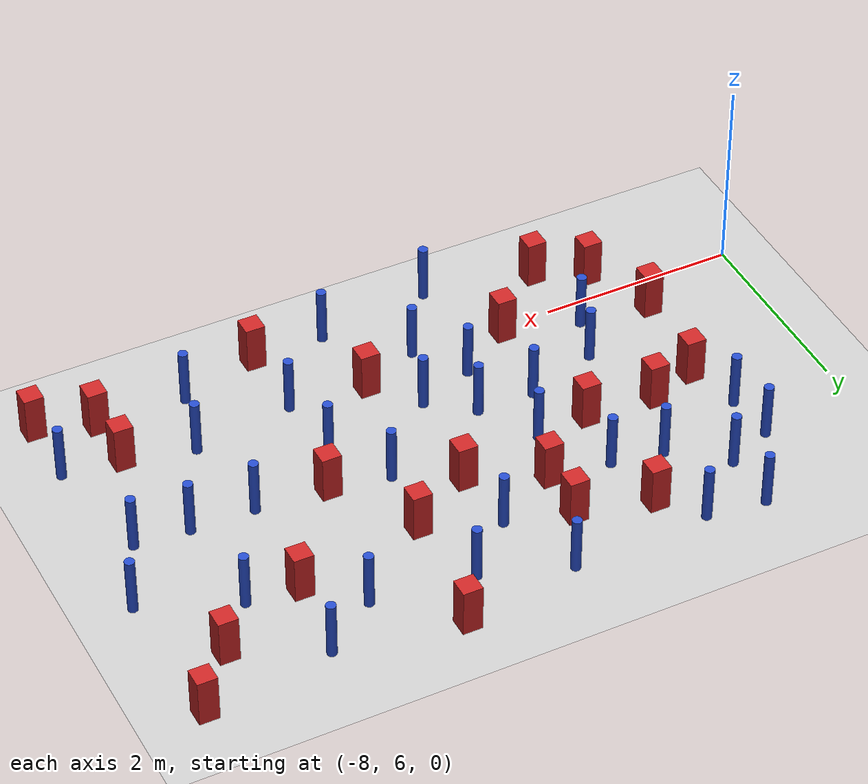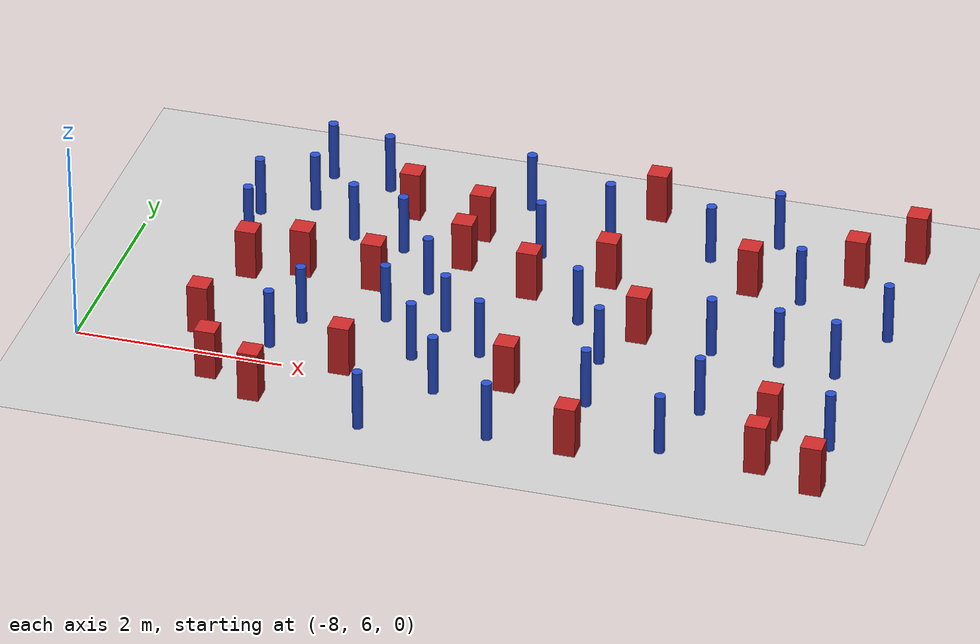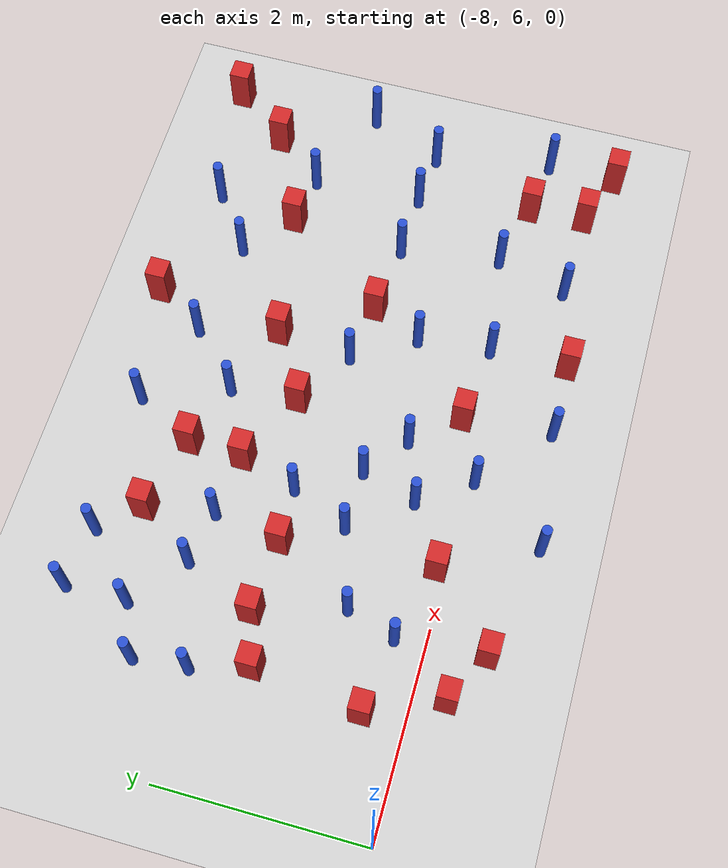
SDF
<sdf version="1.6">
 <world name="default">
  <model name="ground_plane">
   <static>1</static>
   <link name="link">
    <collision name="collision">
     <geometry><plane><normal>0 0 1</normal><size>100 100</size></plane></geometry>
     <surface><friction><ode><mu>100</mu><mu2>50</mu2></ode></friction></surface>
    </collision>
    <visual name="visual">
     <cast_shadows>0</cast_shadows>
     <geometry><plane><normal>0 0 1</normal><size>100 100</size></plane></geometry>
     <material>
      <ambient>1.0 1.0 1.0 1.0</ambient>
      <diffuse>0.8 0.8 0.8 1.0</diffuse>
      <specular>0.01 0.01 0.01 1.000000</specular>
     </material>
    </visual>
   </link>
  </model>
  <model name="pole_obstacle3">
   <static>true</static>
   <pose>-3.83155564193 5.35007794402 -2.66029137441e-07 -5.69430205635e-07 6.84129966557e-07 -8.68349370832e-08</pose>
   <link name="link">
    <pose>0 0 0.3 0 -0 0</pose>
    <inertial>
     <mass>1</mass>
     <inertia><ixx>0.145833</ixx><ixy>0</ixy><ixz>0</ixz><iyy>0.145833</iyy><iyz>0</iyz><izz>0.125</izz></inertia>
    </inertial>
    <collision name="collision">
     <geometry><cylinder><radius>0.05</radius><length>.6</length></cylinder></geometry>
    </collision>
    <visual name="visual">
     <geometry><cylinder><radius>0.05</radius><length>.6</length></cylinder></geometry>
     <material>
      <script><name>Gazebo/Blue</name><uri>file://media/materials/scripts/gazebo.material</uri></script>
     </material>
    </visual>
   </link>
  </model>
  <model name="square_post_obstacle4">
   <static>true</static>
   <pose>-3.45802651375 8.20342208291 -7.80171244635e-07 7.17449752808e-06 -5.6639232126e-07 2.2715510512e-05</pose>
   <link name="link">
    <pose>0 0 0.25 0 -0 0</pose>
    <inertial>
     <mass>100</mass>
     <inertia>
      <ixx>0.166667</ixx>
      <ixy>0</ixy>
      <ixz>0</ixz>
      <iyy>0.166667</iyy>
      <iyz>0</iyz>
      <izz>0.166667</izz>
     </inertia>
    </inertial>
    <collision name="collision"><geometry><box><size>.2 .2 .5</size></box></geometry></collision>
    <visual name="visual">
     <geometry><box><size>.2 .2 .5</size></box></geometry>
     <material>
      <script><name>Gazebo/Red</name><uri>file://media/materials/scripts/gazebo.material</uri></script>
     </material>
    </visual>
   </link>
  </model>
  <model name="pole_obstacle13">
   <static>true</static>
   <pose>-2.22282044226 7.28602632548 -2.66029137441e-07 -5.69430205635e-07 6.84129966557e-07 -8.68349370832e-08</pose>
   <link name="link">
    <pose>0 0 0.3 0 -0 0</pose>
    <inertial>
     <mass>1</mass>
     <inertia><ixx>0.145833</ixx><ixy>0</ixy><ixz>0</ixz><iyy>0.145833</iyy><iyz>0</iyz><izz>0.125</izz></inertia>
    </inertial>
    <collision name="collision">
     <geometry><cylinder><radius>0.05</radius><length>.6</length></cylinder></geometry>
    </collision>
    <visual name="visual">
     <geometry><cylinder><radius>0.05</radius><length>.6</length></cylinder></geometry>
     <material>
      <script><name>Gazebo/Blue</name><uri>file://media/materials/scripts/gazebo.material</uri></script>
     </material>
    </visual>
   </link>
  </model>
  <model name="square_post_obstacle10">
   <static>true</static>
   <pose>-1.35046148378 5.55683016346 -7.80171244635e-07 7.17449752808e-06 -5.6639232126e-07 2.2715510512e-05</pose>
   <link name="link">
    <pose>0 0 0.25 0 -0 0</pose>
    <inertial>
     <mass>100</mass>
     <inertia>
      <ixx>0.166667</ixx>
      <ixy>0</ixy>
      <ixz>0</ixz>
      <iyy>0.166667</iyy>
      <iyz>0</iyz>
      <izz>0.166667</izz>
     </inertia>
    </inertial>
    <collision name="collision"><geometry><box><size>.2 .2 .5</size></box></geometry></collision>
    <visual name="visual">
     <geometry><box><size>.2 .2 .5</size></box></geometry>
     <material>
      <script><name>Gazebo/Red</name><uri>file://media/materials/scripts/gazebo.material</uri></script>
     </material>
    </visual>
   </link>
  </model>
  <model name="pole_obstacle22">
   <static>true</static>
   <pose>-1.63562306769 8.36145736392 -2.66029137441e-07 -5.69430205648e-07 6.84129966543e-07 -8.68349370925e-08</pose>
   <link name="link">
    <pose>0 0 0.3 0 -0 0</pose>
    <inertial>
     <mass>1</mass>
     <inertia><ixx>0.145833</ixx><ixy>0</ixy><ixz>0</ixz><iyy>0.145833</iyy><iyz>0</iyz><izz>0.125</izz></inertia>
    </inertial>
    <collision name="collision">
     <geometry><cylinder><radius>0.05</radius><length>.6</length></cylinder></geometry>
    </collision>
    <visual name="visual">
     <geometry><cylinder><radius>0.05</radius><length>.6</length></cylinder></geometry>
     <material>
      <script><name>Gazebo/Blue</name><uri>file://media/materials/scripts/gazebo.material</uri></script>
     </material>
    </visual>
   </link>
  </model>
  <model name="square_post_obstacle18">
   <static>true</static>
   <pose>-6.28844079783 7.6105690469 -7.80171244635e-07 7.17449752808e-06 -5.6639232126e-07 2.2715510512e-05</pose>
   <link name="link">
    <pose>0 0 0.25 0 -0 0</pose>
    <inertial>
     <mass>100</mass>
     <inertia>
      <ixx>0.166667</ixx>
      <ixy>0</ixy>
      <ixz>0</ixz>
      <iyy>0.166667</iyy>
      <iyz>0</iyz>
      <izz>0.166667</izz>
     </inertia>
    </inertial>
    <collision name="collision"><geometry><box><size>.2 .2 .5</size></box></geometry></collision>
    <visual name="visual">
     <geometry><box><size>.2 .2 .5</size></box></geometry>
     <material>
      <script><name>Gazebo/Red</name><uri>file://media/materials/scripts/gazebo.material</uri></script>
     </material>
    </visual>
   </link>
  </model>
  <model name="pole_obstacle35">
   <static>true</static>
   <pose>-5.0119251478 5.20659015435 -2.66029137441e-07 -5.69430205655e-07 6.84129966534e-07 -8.68349370984e-08</pose>
   <link name="link">
    <pose>0 0 0.3 0 -0 0</pose>
    <inertial>
     <mass>1</mass>
     <inertia><ixx>0.145833</ixx><ixy>0</ixy><ixz>0</ixz><iyy>0.145833</iyy><iyz>0</iyz><izz>0.125</izz></inertia>
    </inertial>
    <collision name="collision">
     <geometry><cylinder><radius>0.05</radius><length>.6</length></cylinder></geometry>
    </collision>
    <visual name="visual">
     <geometry><cylinder><radius>0.05</radius><length>.6</length></cylinder></geometry>
     <material>
      <script><name>Gazebo/Blue</name><uri>file://media/materials/scripts/gazebo.material</uri></script>
     </material>
    </visual>
   </link>
  </model>
  <model name="pole_obstacle37">
   <static>true</static>
   <pose>-5.47903193001 8.22223488901 -2.66029137441e-07 -5.69430205631e-07 6.84129966561e-07 -8.68349370782e-08</pose>
   <link name="link">
    <pose>0 0 0.3 0 -0 0</pose>
    <inertial>
     <mass>1</mass>
     <inertia><ixx>0.145833</ixx><ixy>0</ixy><ixz>0</ixz><iyy>0.145833</iyy><iyz>0</iyz><izz>0.125</izz></inertia>
    </inertial>
    <collision name="collision">
     <geometry><cylinder><radius>0.05</radius><length>.6</length></cylinder></geometry>
    </collision>
    <visual name="visual">
     <geometry><cylinder><radius>0.05</radius><length>.6</length></cylinder></geometry>
     <material>
      <script><name>Gazebo/Blue</name><uri>file://media/materials/scripts/gazebo.material</uri></script>
     </material>
    </visual>
   </link>
  </model>
  <model name="pole_obstacle43">
   <static>true</static>
   <pose>-2.07350805295 6.28632991061 -2.66029137441e-07 -5.69430205635e-07 6.84129966557e-07 -8.68349370832e-08</pose>
   <link name="link">
    <pose>0 0 0.3 0 -0 0</pose>
    <inertial>
     <mass>1</mass>
     <inertia><ixx>0.145833</ixx><ixy>0</ixy><ixz>0</ixz><iyy>0.145833</iyy><iyz>0</iyz><izz>0.125</izz></inertia>
    </inertial>
    <collision name="collision">
     <geometry><cylinder><radius>0.05</radius><length>.6</length></cylinder></geometry>
    </collision>
    <visual name="visual">
     <geometry><cylinder><radius>0.05</radius><length>.6</length></cylinder></geometry>
     <material>
      <script><name>Gazebo/Blue</name><uri>file://media/materials/scripts/gazebo.material</uri></script>
     </material>
    </visual>
   </link>
  </model>
  <model name="square_post_obstacle35">
   <static>true</static>
   <pose>-0.756517397832 9.43975588993 -7.80171244635e-07 7.17449752808e-06 -5.6639232126e-07 2.2715510512e-05</pose>
   <link name="link">
    <pose>0 0 0.25 0 -0 0</pose>
    <inertial>
     <mass>100</mass>
     <inertia>
      <ixx>0.166667</ixx>
      <ixy>0</ixy>
      <ixz>0</ixz>
      <iyy>0.166667</iyy>
      <iyz>0</iyz>
      <izz>0.166667</izz>
     </inertia>
    </inertial>
    <collision name="collision"><geometry><box><size>.2 .2 .5</size></box></geometry></collision>
    <visual name="visual">
     <geometry><box><size>.2 .2 .5</size></box></geometry>
     <material>
      <script><name>Gazebo/Red</name><uri>file://media/materials/scripts/gazebo.material</uri></script>
     </material>
    </visual>
   </link>
  </model>
  <model name="pole_obstacle62">
   <static>true</static>
   <pose>-6.51730041118 9.33037600184 -2.66029137441e-07 -5.69430205631e-07 6.84129966561e-07 -8.68349370782e-08</pose>
   <link name="link">
    <pose>0 0 0.3 0 -0 0</pose>
    <inertial>
     <mass>1</mass>
     <inertia><ixx>0.145833</ixx><ixy>0</ixy><ixz>0</ixz><iyy>0.145833</iyy><iyz>0</iyz><izz>0.125</izz></inertia>
    </inertial>
    <collision name="collision">
     <geometry><cylinder><radius>0.05</radius><length>.6</length></cylinder></geometry>
    </collision>
    <visual name="visual">
     <geometry><cylinder><radius>0.05</radius><length>.6</length></cylinder></geometry>
     <material>
      <script><name>Gazebo/Blue</name><uri>file://media/materials/scripts/gazebo.material</uri></script>
     </material>
    </visual>
   </link>
  </model>
  <model name="pole_obstacle67">
   <static>true</static>
   <pose>-5.28937603541 7.01205851027 -2.66029137441e-07 -5.69430205655e-07 6.84129966534e-07 -8.68349370984e-08</pose>
   <link name="link">
    <pose>0 0 0.3 0 -0 0</pose>
    <inertial>
     <mass>1</mass>
     <inertia><ixx>0.145833</ixx><ixy>0</ixy><ixz>0</ixz><iyy>0.145833</iyy><iyz>0</iyz><izz>0.125</izz></inertia>
    </inertial>
    <collision name="collision">
     <geometry><cylinder><radius>0.05</radius><length>.6</length></cylinder></geometry>
    </collision>
    <visual name="visual">
     <geometry><cylinder><radius>0.05</radius><length>.6</length></cylinder></geometry>
     <material>
      <script><name>Gazebo/Blue</name><uri>file://media/materials/scripts/gazebo.material</uri></script>
     </material>
    </visual>
   </link>
  </model>
  <model name="pole_obstacle68">
   <static>true</static>
   <pose>-4.19844832474 8.4826726682 -2.66029137441e-07 -5.69430205631e-07 6.84129966561e-07 -8.68349370782e-08</pose>
   <link name="link">
    <pose>0 0 0.3 0 -0 0</pose>
    <inertial>
     <mass>1</mass>
     <inertia><ixx>0.145833</ixx><ixy>0</ixy><ixz>0</ixz><iyy>0.145833</iyy><iyz>0</iyz><izz>0.125</izz></inertia>
    </inertial>
    <collision name="collision">
     <geometry><cylinder><radius>0.05</radius><length>.6</length></cylinder></geometry>
    </collision>
    <visual name="visual">
     <geometry><cylinder><radius>0.05</radius><length>.6</length></cylinder></geometry>
     <material>
      <script><name>Gazebo/Blue</name><uri>file://media/materials/scripts/gazebo.material</uri></script>
     </material>
    </visual>
   </link>
  </model>
  <model name="square_post_obstacle53">
   <static>true</static>
   <pose>-6.60438786823 5.69922697077 -7.80171244635e-07 7.17449752808e-06 -5.6639232126e-07 2.2715510512e-05</pose>
   <link name="link">
    <pose>0 0 0.25 0 -0 0</pose>
    <inertial>
     <mass>100</mass>
     <inertia>
      <ixx>0.166667</ixx>
      <ixy>0</ixy>
      <ixz>0</ixz>
      <iyy>0.166667</iyy>
      <iyz>0</iyz>
      <izz>0.166667</izz>
     </inertia>
    </inertial>
    <collision name="collision"><geometry><box><size>.2 .2 .5</size></box></geometry></collision>
    <visual name="visual">
     <geometry><box><size>.2 .2 .5</size></box></geometry>
     <material>
      <script><name>Gazebo/Red</name><uri>file://media/materials/scripts/gazebo.material</uri></script>
     </material>
    </visual>
   </link>
  </model>
  <model name="square_post_obstacle54">
   <static>true</static>
   <pose>-6.90841727113 6.40134855489 -7.80171244635e-07 7.17449752808e-06 -5.6639232126e-07 2.2715510512e-05</pose>
   <link name="link">
    <pose>0 0 0.25 0 -0 0</pose>
    <inertial>
     <mass>100</mass>
     <inertia>
      <ixx>0.166667</ixx>
      <ixy>0</ixy>
      <ixz>0</ixz>
      <iyy>0.166667</iyy>
      <iyz>0</iyz>
      <izz>0.166667</izz>
     </inertia>
    </inertial>
    <collision name="collision"><geometry><box><size>.2 .2 .5</size></box></geometry></collision>
    <visual name="visual">
     <geometry><box><size>.2 .2 .5</size></box></geometry>
     <material>
      <script><name>Gazebo/Red</name><uri>file://media/materials/scripts/gazebo.material</uri></script>
     </material>
    </visual>
   </link>
  </model>
  <model name="pole_obstacle74">
   <static>true</static>
   <pose>-3.18417632675 6.85759458082 -2.66029137441e-07 -5.69430205635e-07 6.84129966557e-07 -8.68349370832e-08</pose>
   <link name="link">
    <pose>0 0 0.3 0 -0 0</pose>
    <inertial>
     <mass>1</mass>
     <inertia><ixx>0.145833</ixx><ixy>0</ixy><ixz>0</ixz><iyy>0.145833</iyy><iyz>0</iyz><izz>0.125</izz></inertia>
    </inertial>
    <collision name="collision">
     <geometry><cylinder><radius>0.05</radius><length>.6</length></cylinder></geometry>
    </collision>
    <visual name="visual">
     <geometry><cylinder><radius>0.05</radius><length>.6</length></cylinder></geometry>
     <material>
      <script><name>Gazebo/Blue</name><uri>file://media/materials/scripts/gazebo.material</uri></script>
     </material>
    </visual>
   </link>
  </model>
  <model name="square_post_obstacle65">
   <static>true</static>
   <pose>-4.85538721014 8.14171201893 -7.80171244635e-07 7.17449752808e-06 -5.6639232126e-07 2.2715510512e-05</pose>
   <link name="link">
    <pose>0 0 0.25 0 -0 0</pose>
    <inertial>
     <mass>100</mass>
     <inertia>
      <ixx>0.166667</ixx>
      <ixy>0</ixy>
      <ixz>0</ixz>
      <iyy>0.166667</iyy>
      <iyz>0</iyz>
      <izz>0.166667</izz>
     </inertia>
    </inertial>
    <collision name="collision"><geometry><box><size>.2 .2 .5</size></box></geometry></collision>
    <visual name="visual">
     <geometry><box><size>.2 .2 .5</size></box></geometry>
     <material>
      <script><name>Gazebo/Red</name><uri>file://media/materials/scripts/gazebo.material</uri></script>
     </material>
    </visual>
   </link>
  </model>
  <model name="square_post_obstacle67">
   <static>true</static>
   <pose>-1.21285131848 8.86577092566 -7.80171244635e-07 7.17449752808e-06 -5.6639232126e-07 2.2715510512e-05</pose>
   <link name="link">
    <pose>0 0 0.25 0 -0 0</pose>
    <inertial>
     <mass>100</mass>
     <inertia>
      <ixx>0.166667</ixx>
      <ixy>0</ixy>
      <ixz>0</ixz>
      <iyy>0.166667</iyy>
      <iyz>0</iyz>
      <izz>0.166667</izz>
     </inertia>
    </inertial>
    <collision name="collision"><geometry><box><size>.2 .2 .5</size></box></geometry></collision>
    <visual name="visual">
     <geometry><box><size>.2 .2 .5</size></box></geometry>
     <material>
      <script><name>Gazebo/Red</name><uri>file://media/materials/scripts/gazebo.material</uri></script>
     </material>
    </visual>
   </link>
  </model>
  <model name="pole_obstacle84">
   <static>true</static>
   <pose>-6.04051974747 6.77217891038 -2.66029137441e-07 -5.69430205655e-07 6.84129966534e-07 -8.68349370984e-08</pose>
   <link name="link">
    <pose>0 0 0.3 0 -0 0</pose>
    <inertial>
     <mass>1</mass>
     <inertia><ixx>0.145833</ixx><ixy>0</ixy><ixz>0</ixz><iyy>0.145833</iyy><iyz>0</iyz><izz>0.125</izz></inertia>
    </inertial>
    <collision name="collision">
     <geometry><cylinder><radius>0.05</radius><length>.6</length></cylinder></geometry>
    </collision>
    <visual name="visual">
     <geometry><cylinder><radius>0.05</radius><length>.6</length></cylinder></geometry>
     <material>
      <script><name>Gazebo/Blue</name><uri>file://media/materials/scripts/gazebo.material</uri></script>
     </material>
    </visual>
   </link>
  </model>
  <model name="pole_obstacle85">
   <static>true</static>
   <pose>-4.70210681934 6.99909712887 -2.66029137441e-07 -5.69430205655e-07 6.84129966534e-07 -8.68349370984e-08</pose>
   <link name="link">
    <pose>0 0 0.3 0 -0 0</pose>
    <inertial>
     <mass>1</mass>
     <inertia><ixx>0.145833</ixx><ixy>0</ixy><ixz>0</ixz><iyy>0.145833</iyy><iyz>0</iyz><izz>0.125</izz></inertia>
    </inertial>
    <collision name="collision">
     <geometry><cylinder><radius>0.05</radius><length>.6</length></cylinder></geometry>
    </collision>
    <visual name="visual">
     <geometry><cylinder><radius>0.05</radius><length>.6</length></cylinder></geometry>
     <material>
      <script><name>Gazebo/Blue</name><uri>file://media/materials/scripts/gazebo.material</uri></script>
     </material>
    </visual>
   </link>
  </model>
  <model name="square_post_obstacle80">
   <static>true</static>
   <pose>-0.787042544222 5.35771507128 -7.80171244635e-07 7.17449752808e-06 -5.6639232126e-07 2.2715510512e-05</pose>
   <link name="link">
    <pose>0 0 0.25 0 -0 0</pose>
    <inertial>
     <mass>100</mass>
     <inertia>
      <ixx>0.166667</ixx>
      <ixy>0</ixy>
      <ixz>0</ixz>
      <iyy>0.166667</iyy>
      <iyz>0</iyz>
      <izz>0.166667</izz>
     </inertia>
    </inertial>
    <collision name="collision"><geometry><box><size>.2 .2 .5</size></box></geometry></collision>
    <visual name="visual">
     <geometry><box><size>.2 .2 .5</size></box></geometry>
     <material>
      <script><name>Gazebo/Red</name><uri>file://media/materials/scripts/gazebo.material</uri></script>
     </material>
    </visual>
   </link>
  </model>
  <model name="square_post_obstacle84">
   <static>true</static>
   <pose>-5.43868791954 6.09136966654 -7.80171244635e-07 7.17449752808e-06 -5.6639232126e-07 2.2715510512e-05</pose>
   <link name="link">
    <pose>0 0 0.25 0 -0 0</pose>
    <inertial>
     <mass>100</mass>
     <inertia>
      <ixx>0.166667</ixx>
      <ixy>0</ixy>
      <ixz>0</ixz>
      <iyy>0.166667</iyy>
      <iyz>0</iyz>
      <izz>0.166667</izz>
     </inertia>
    </inertial>
    <collision name="collision"><geometry><box><size>.2 .2 .5</size></box></geometry></collision>
    <visual name="visual">
     <geometry><box><size>.2 .2 .5</size></box></geometry>
     <material>
      <script><name>Gazebo/Red</name><uri>file://media/materials/scripts/gazebo.material</uri></script>
     </material>
    </visual>
   </link>
  </model>
  <model name="pole_obstacle98">
   <static>true</static>
   <pose>-2.26637634134 5.57869534648 -2.66029137441e-07 -5.69430205635e-07 6.84129966557e-07 -8.68349370832e-08</pose>
   <link name="link">
    <pose>0 0 0.3 0 -0 0</pose>
    <inertial>
     <mass>1</mass>
     <inertia><ixx>0.145833</ixx><ixy>0</ixy><ixz>0</ixz><iyy>0.145833</iyy><iyz>0</iyz><izz>0.125</izz></inertia>
    </inertial>
    <collision name="collision">
     <geometry><cylinder><radius>0.05</radius><length>.6</length></cylinder></geometry>
    </collision>
    <visual name="visual">
     <geometry><cylinder><radius>0.05</radius><length>.6</length></cylinder></geometry>
     <material>
      <script><name>Gazebo/Blue</name><uri>file://media/materials/scripts/gazebo.material</uri></script>
     </material>
    </visual>
   </link>
  </model>
  <model name="square_post_obstacle97">
   <static>true</static>
   <pose>-4.83306987089 8.68425424753 -7.80171244635e-07 7.17449752808e-06 -5.6639232126e-07 2.2715510512e-05</pose>
   <link name="link">
    <pose>0 0 0.25 0 -0 0</pose>
    <inertial>
     <mass>100</mass>
     <inertia>
      <ixx>0.166667</ixx>
      <ixy>0</ixy>
      <ixz>0</ixz>
      <iyy>0.166667</iyy>
      <iyz>0</iyz>
      <izz>0.166667</izz>
     </inertia>
    </inertial>
    <collision name="collision"><geometry><box><size>.2 .2 .5</size></box></geometry></collision>
    <visual name="visual">
     <geometry><box><size>.2 .2 .5</size></box></geometry>
     <material>
      <script><name>Gazebo/Red</name><uri>file://media/materials/scripts/gazebo.material</uri></script>
     </material>
    </visual>
   </link>
  </model>
  <model name="pole_obstacle103">
   <static>true</static>
   <pose>-2.0657132263 9.26760777815 -2.66029137497e-07 -5.69430205676e-07 6.84129966501e-07 -8.6834937112e-08</pose>
   <link name="link">
    <pose>0 0 0.3 0 -0 0</pose>
    <inertial>
     <mass>1</mass>
     <inertia><ixx>0.145833</ixx><ixy>0</ixy><ixz>0</ixz><iyy>0.145833</iyy><iyz>0</iyz><izz>0.125</izz></inertia>
    </inertial>
    <collision name="collision">
     <geometry><cylinder><radius>0.05</radius><length>.6</length></cylinder></geometry>
    </collision>
    <visual name="visual">
     <geometry><cylinder><radius>0.05</radius><length>.6</length></cylinder></geometry>
     <material>
      <script><name>Gazebo/Blue</name><uri>file://media/materials/scripts/gazebo.material</uri></script>
     </material>
    </visual>
   </link>
  </model>
  <model name="square_post_obstacle99">
   <static>true</static>
   <pose>-2.9395717654 7.36137374636 -7.80171244635e-07 7.17449752808e-06 -5.6639232126e-07 2.2715510512e-05</pose>
   <link name="link">
    <pose>0 0 0.25 0 -0 0</pose>
    <inertial>
     <mass>100</mass>
     <inertia>
      <ixx>0.166667</ixx>
      <ixy>0</ixy>
      <ixz>0</ixz>
      <iyy>0.166667</iyy>
      <iyz>0</iyz>
      <izz>0.166667</izz>
     </inertia>
    </inertial>
    <collision name="collision"><geometry><box><size>.2 .2 .5</size></box></geometry></collision>
    <visual name="visual">
     <geometry><box><size>.2 .2 .5</size></box></geometry>
     <material>
      <script><name>Gazebo/Red</name><uri>file://media/materials/scripts/gazebo.material</uri></script>
     </material>
    </visual>
   </link>
  </model>
  <model name="pole_obstacle111">
   <static>true</static>
   <pose>-4.51720619491 9.29301747409 -2.66029137441e-07 -5.69430205631e-07 6.84129966561e-07 -8.68349370782e-08</pose>
   <link name="link">
    <pose>0 0 0.3 0 -0 0</pose>
    <inertial>
     <mass>1</mass>
     <inertia><ixx>0.145833</ixx><ixy>0</ixy><ixz>0</ixz><iyy>0.145833</iyy><iyz>0</iyz><izz>0.125</izz></inertia>
    </inertial>
    <collision name="collision">
     <geometry><cylinder><radius>0.05</radius><length>.6</length></cylinder></geometry>
    </collision>
    <visual name="visual">
     <geometry><cylinder><radius>0.05</radius><length>.6</length></cylinder></geometry>
     <material>
      <script><name>Gazebo/Blue</name><uri>file://media/materials/scripts/gazebo.material</uri></script>
     </material>
    </visual>
   </link>
  </model>
  <model name="pole_obstacle115">
   <static>true</static>
   <pose>-6.20096019763 6.2934191414 -2.66029137441e-07 -5.69430205655e-07 6.84129966534e-07 -8.68349370984e-08</pose>
   <link name="link">
    <pose>0 0 0.3 0 -0 0</pose>
    <inertial>
     <mass>1</mass>
     <inertia><ixx>0.145833</ixx><ixy>0</ixy><ixz>0</ixz><iyy>0.145833</iyy><iyz>0</iyz><izz>0.125</izz></inertia>
    </inertial>
    <collision name="collision">
     <geometry><cylinder><radius>0.05</radius><length>.6</length></cylinder></geometry>
    </collision>
    <visual name="visual">
     <geometry><cylinder><radius>0.05</radius><length>.6</length></cylinder></geometry>
     <material>
      <script><name>Gazebo/Blue</name><uri>file://media/materials/scripts/gazebo.material</uri></script>
     </material>
    </visual>
   </link>
  </model>
  <model name="square_post_obstacle114">
   <static>true</static>
   <pose>-3.8923312352 6.22501052048 -7.80171244635e-07 7.17449752808e-06 -5.6639232126e-07 2.2715510512e-05</pose>
   <link name="link">
    <pose>0 0 0.25 0 -0 0</pose>
    <inertial>
     <mass>100</mass>
     <inertia>
      <ixx>0.166667</ixx>
      <ixy>0</ixy>
      <ixz>0</ixz>
      <iyy>0.166667</iyy>
      <iyz>0</iyz>
      <izz>0.166667</izz>
     </inertia>
    </inertial>
    <collision name="collision"><geometry><box><size>.2 .2 .5</size></box></geometry></collision>
    <visual name="visual">
     <geometry><box><size>.2 .2 .5</size></box></geometry>
     <material>
      <script><name>Gazebo/Red</name><uri>file://media/materials/scripts/gazebo.material</uri></script>
     </material>
    </visual>
   </link>
  </model>
  <model name="square_post_obstacle115">
   <static>true</static>
   <pose>-5.58568108839 8.87641415121 -7.80171244635e-07 7.17449752808e-06 -5.6639232126e-07 2.2715510512e-05</pose>
   <link name="link">
    <pose>0 0 0.25 0 -0 0</pose>
    <inertial>
     <mass>100</mass>
     <inertia>
      <ixx>0.166667</ixx>
      <ixy>0</ixy>
      <ixz>0</ixz>
      <iyy>0.166667</iyy>
      <iyz>0</iyz>
      <izz>0.166667</izz>
     </inertia>
    </inertial>
    <collision name="collision"><geometry><box><size>.2 .2 .5</size></box></geometry></collision>
    <visual name="visual">
     <geometry><box><size>.2 .2 .5</size></box></geometry>
     <material>
      <script><name>Gazebo/Red</name><uri>file://media/materials/scripts/gazebo.material</uri></script>
     </material>
    </visual>
   </link>
  </model>
  <model name="pole_obstacle126">
   <static>true</static>
   <pose>-4.51668198272 5.95405970861 -2.66029137441e-07 -5.69430205655e-07 6.84129966534e-07 -8.68349370984e-08</pose>
   <link name="link">
    <pose>0 0 0.3 0 -0 0</pose>
    <inertial>
     <mass>1</mass>
     <inertia><ixx>0.145833</ixx><ixy>0</ixy><ixz>0</ixz><iyy>0.145833</iyy><iyz>0</iyz><izz>0.125</izz></inertia>
    </inertial>
    <collision name="collision">
     <geometry><cylinder><radius>0.05</radius><length>.6</length></cylinder></geometry>
    </collision>
    <visual name="visual">
     <geometry><cylinder><radius>0.05</radius><length>.6</length></cylinder></geometry>
     <material>
      <script><name>Gazebo/Blue</name><uri>file://media/materials/scripts/gazebo.material</uri></script>
     </material>
    </visual>
   </link>
  </model>
  <model name="pole_obstacle137">
   <static>true</static>
   <pose>-1.57457767515 7.26766557853 -2.66029137441e-07 -5.69430205635e-07 6.84129966557e-07 -8.68349370822e-08</pose>
   <link name="link">
    <pose>0 0 0.3 0 -0 0</pose>
    <inertial>
     <mass>1</mass>
     <inertia><ixx>0.145833</ixx><ixy>0</ixy><ixz>0</ixz><iyy>0.145833</iyy><iyz>0</iyz><izz>0.125</izz></inertia>
    </inertial>
    <collision name="collision">
     <geometry><cylinder><radius>0.05</radius><length>.6</length></cylinder></geometry>
    </collision>
    <visual name="visual">
     <geometry><cylinder><radius>0.05</radius><length>.6</length></cylinder></geometry>
     <material>
      <script><name>Gazebo/Blue</name><uri>file://media/materials/scripts/gazebo.material</uri></script>
     </material>
    </visual>
   </link>
  </model>
  <model name="square_post_obstacle136">
   <static>true</static>
   <pose>-1.3748794912 6.12511199607 -7.80171244635e-07 7.17449752808e-06 -5.6639232126e-07 2.2715510512e-05</pose>
   <link name="link">
    <pose>0 0 0.25 0 -0 0</pose>
    <inertial>
     <mass>100</mass>
     <inertia>
      <ixx>0.166667</ixx>
      <ixy>0</ixy>
      <ixz>0</ixz>
      <iyy>0.166667</iyy>
      <iyz>0</iyz>
      <izz>0.166667</izz>
     </inertia>
    </inertial>
    <collision name="collision"><geometry><box><size>.2 .2 .5</size></box></geometry></collision>
    <visual name="visual">
     <geometry><box><size>.2 .2 .5</size></box></geometry>
     <material>
      <script><name>Gazebo/Red</name><uri>file://media/materials/scripts/gazebo.material</uri></script>
     </material>
    </visual>
   </link>
  </model>
  <model name="pole_obstacle141">
   <static>true</static>
   <pose>-5.04408427418 7.57913752985 -2.66029137441e-07 -5.69430205655e-07 6.84129966534e-07 -8.68349370984e-08</pose>
   <link name="link">
    <pose>0 0 0.3 0 -0 0</pose>
    <inertial>
     <mass>1</mass>
     <inertia><ixx>0.145833</ixx><ixy>0</ixy><ixz>0</ixz><iyy>0.145833</iyy><iyz>0</iyz><izz>0.125</izz></inertia>
    </inertial>
    <collision name="collision">
     <geometry><cylinder><radius>0.05</radius><length>.6</length></cylinder></geometry>
    </collision>
    <visual name="visual">
     <geometry><cylinder><radius>0.05</radius><length>.6</length></cylinder></geometry>
     <material>
      <script><name>Gazebo/Blue</name><uri>file://media/materials/scripts/gazebo.material</uri></script>
     </material>
    </visual>
   </link>
  </model>
  <model name="pole_obstacle143">
   <static>true</static>
   <pose>-6.51559439478 8.72923597652 -2.66029137441e-07 -5.69430205631e-07 6.84129966561e-07 -8.68349370782e-08</pose>
   <link name="link">
    <pose>0 0 0.3 0 -0 0</pose>
    <inertial>
     <mass>1</mass>
     <inertia><ixx>0.145833</ixx><ixy>0</ixy><ixz>0</ixz><iyy>0.145833</iyy><iyz>0</iyz><izz>0.125</izz></inertia>
    </inertial>
    <collision name="collision">
     <geometry><cylinder><radius>0.05</radius><length>.6</length></cylinder></geometry>
    </collision>
    <visual name="visual">
     <geometry><cylinder><radius>0.05</radius><length>.6</length></cylinder></geometry>
     <material>
      <script><name>Gazebo/Blue</name><uri>file://media/materials/scripts/gazebo.material</uri></script>
     </material>
    </visual>
   </link>
  </model>
  <model name="pole_obstacle151">
   <static>true</static>
   <pose>-3.65585699153 8.99138015541 -2.66029137441e-07 -5.69430205637e-07 6.84129966555e-07 -8.68349370847e-08</pose>
   <link name="link">
    <pose>0 0 0.3 0 -0 0</pose>
    <inertial>
     <mass>1</mass>
     <inertia><ixx>0.145833</ixx><ixy>0</ixy><ixz>0</ixz><iyy>0.145833</iyy><iyz>0</iyz><izz>0.125</izz></inertia>
    </inertial>
    <collision name="collision">
     <geometry><cylinder><radius>0.05</radius><length>.6</length></cylinder></geometry>
    </collision>
    <visual name="visual">
     <geometry><cylinder><radius>0.05</radius><length>.6</length></cylinder></geometry>
     <material>
      <script><name>Gazebo/Blue</name><uri>file://media/materials/scripts/gazebo.material</uri></script>
     </material>
    </visual>
   </link>
  </model>
  <model name="pole_obstacle152">
   <static>true</static>
   <pose>-6.95082460787 7.99515115382 -2.66029137441e-07 -5.69430205635e-07 6.84129966557e-07 -8.6834937082e-08</pose>
   <link name="link">
    <pose>0 0 0.3 0 -0 0</pose>
    <inertial>
     <mass>1</mass>
     <inertia><ixx>0.145833</ixx><ixy>0</ixy><ixz>0</ixz><iyy>0.145833</iyy><iyz>0</iyz><izz>0.125</izz></inertia>
    </inertial>
    <collision name="collision">
     <geometry><cylinder><radius>0.05</radius><length>.6</length></cylinder></geometry>
    </collision>
    <visual name="visual">
     <geometry><cylinder><radius>0.05</radius><length>.6</length></cylinder></geometry>
     <material>
      <script><name>Gazebo/Blue</name><uri>file://media/materials/scripts/gazebo.material</uri></script>
     </material>
    </visual>
   </link>
  </model>
  <model name="square_post_obstacle145">
   <static>true</static>
   <pose>-4.12640113897 7.8137386273 -7.80171244635e-07 7.17449752808e-06 -5.6639232126e-07 2.2715510512e-05</pose>
   <link name="link">
    <pose>0 0 0.25 0 -0 0</pose>
    <inertial>
     <mass>100</mass>
     <inertia>
      <ixx>0.166667</ixx>
      <ixy>0</ixy>
      <ixz>0</ixz>
      <iyy>0.166667</iyy>
      <iyz>0</iyz>
      <izz>0.166667</izz>
     </inertia>
    </inertial>
    <collision name="collision"><geometry><box><size>.2 .2 .5</size></box></geometry></collision>
    <visual name="visual">
     <geometry><box><size>.2 .2 .5</size></box></geometry>
     <material>
      <script><name>Gazebo/Red</name><uri>file://media/materials/scripts/gazebo.material</uri></script>
     </material>
    </visual>
   </link>
  </model>
  <model name="pole_obstacle153">
   <static>true</static>
   <pose>-3.55230551147 7.45695394257 -2.66029137441e-07 -5.69430205635e-07 6.84129966557e-07 -8.68349370832e-08</pose>
   <link name="link">
    <pose>0 0 0.3 0 -0 0</pose>
    <inertial>
     <mass>1</mass>
     <inertia><ixx>0.145833</ixx><ixy>0</ixy><ixz>0</ixz><iyy>0.145833</iyy><iyz>0</iyz><izz>0.125</izz></inertia>
    </inertial>
    <collision name="collision">
     <geometry><cylinder><radius>0.05</radius><length>.6</length></cylinder></geometry>
    </collision>
    <visual name="visual">
     <geometry><cylinder><radius>0.05</radius><length>.6</length></cylinder></geometry>
     <material>
      <script><name>Gazebo/Blue</name><uri>file://media/materials/scripts/gazebo.material</uri></script>
     </material>
    </visual>
   </link>
  </model>
  <model name="pole_obstacle168">
   <static>true</static>
   <pose>-3.11189494337 6.13529411627 -2.66029137497e-07 -5.69430205671e-07 6.84129966507e-07 -8.68349371095e-08</pose>
   <link name="link">
    <pose>0 0 0.3 0 -0 0</pose>
    <inertial>
     <mass>1</mass>
     <inertia><ixx>0.145833</ixx><ixy>0</ixy><ixz>0</ixz><iyy>0.145833</iyy><iyz>0</iyz><izz>0.125</izz></inertia>
    </inertial>
    <collision name="collision">
     <geometry><cylinder><radius>0.05</radius><length>.6</length></cylinder></geometry>
    </collision>
    <visual name="visual">
     <geometry><cylinder><radius>0.05</radius><length>.6</length></cylinder></geometry>
     <material>
      <script><name>Gazebo/Blue</name><uri>file://media/materials/scripts/gazebo.material</uri></script>
     </material>
    </visual>
   </link>
  </model>
  <model name="pole_obstacle170">
   <static>true</static>
   <pose>-0.701549047184 7.96145384339 -2.66029137441e-07 -5.69430205642e-07 6.84129966549e-07 -8.68349370879e-08</pose>
   <link name="link">
    <pose>0 0 0.3 0 -0 0</pose>
    <inertial>
     <mass>1</mass>
     <inertia><ixx>0.145833</ixx><ixy>0</ixy><ixz>0</ixz><iyy>0.145833</iyy><iyz>0</iyz><izz>0.125</izz></inertia>
    </inertial>
    <collision name="collision">
     <geometry><cylinder><radius>0.05</radius><length>.6</length></cylinder></geometry>
    </collision>
    <visual name="visual">
     <geometry><cylinder><radius>0.05</radius><length>.6</length></cylinder></geometry>
     <material>
      <script><name>Gazebo/Blue</name><uri>file://media/materials/scripts/gazebo.material</uri></script>
     </material>
    </visual>
   </link>
  </model>
  <model name="square_post_obstacle172">
   <static>true</static>
   <pose>-3.07698803594 5.36464679175 -7.80171244635e-07 7.17449752808e-06 -5.6639232126e-07 2.2715510512e-05</pose>
   <link name="link">
    <pose>0 0 0.25 0 -0 0</pose>
    <inertial>
     <mass>100</mass>
     <inertia>
      <ixx>0.166667</ixx>
      <ixy>0</ixy>
      <ixz>0</ixz>
      <iyy>0.166667</iyy>
      <iyz>0</iyz>
      <izz>0.166667</izz>
     </inertia>
    </inertial>
    <collision name="collision"><geometry><box><size>.2 .2 .5</size></box></geometry></collision>
    <visual name="visual">
     <geometry><box><size>.2 .2 .5</size></box></geometry>
     <material>
      <script><name>Gazebo/Red</name><uri>file://media/materials/scripts/gazebo.material</uri></script>
     </material>
    </visual>
   </link>
  </model>
  <model name="pole_obstacle179">
   <static>true</static>
   <pose>-5.92313193138 9.25082947294 -2.66029137441e-07 -5.69430205631e-07 6.84129966561e-07 -8.68349370782e-08</pose>
   <link name="link">
    <pose>0 0 0.3 0 -0 0</pose>
    <inertial>
     <mass>1</mass>
     <inertia><ixx>0.145833</ixx><ixy>0</ixy><ixz>0</ixz><iyy>0.145833</iyy><iyz>0</iyz><izz>0.125</izz></inertia>
    </inertial>
    <collision name="collision">
     <geometry><cylinder><radius>0.05</radius><length>.6</length></cylinder></geometry>
    </collision>
    <visual name="visual">
     <geometry><cylinder><radius>0.05</radius><length>.6</length></cylinder></geometry>
     <material>
      <script><name>Gazebo/Blue</name><uri>file://media/materials/scripts/gazebo.material</uri></script>
     </material>
    </visual>
   </link>
  </model>
  <model name="pole_obstacle180">
   <static>true</static>
   <pose>-4.28005993833 6.66628853146 -2.66029137441e-07 -5.69430205655e-07 6.84129966534e-07 -8.68349370984e-08</pose>
   <link name="link">
    <pose>0 0 0.3 0 -0 0</pose>
    <inertial>
     <mass>1</mass>
     <inertia><ixx>0.145833</ixx><ixy>0</ixy><ixz>0</ixz><iyy>0.145833</iyy><iyz>0</iyz><izz>0.125</izz></inertia>
    </inertial>
    <collision name="collision">
     <geometry><cylinder><radius>0.05</radius><length>.6</length></cylinder></geometry>
    </collision>
    <visual name="visual">
     <geometry><cylinder><radius>0.05</radius><length>.6</length></cylinder></geometry>
     <material>
      <script><name>Gazebo/Blue</name><uri>file://media/materials/scripts/gazebo.material</uri></script>
     </material>
    </visual>
   </link>
  </model>
  <model name="square_post_obstacle180">
   <static>true</static>
   <pose>-3.3088390037 9.49504350098 -7.80171244635e-07 7.17449752808e-06 -5.6639232126e-07 2.2715510512e-05</pose>
   <link name="link">
    <pose>0 0 0.25 0 -0 0</pose>
    <inertial>
     <mass>100</mass>
     <inertia>
      <ixx>0.166667</ixx>
      <ixy>0</ixy>
      <ixz>0</ixz>
      <iyy>0.166667</iyy>
      <iyz>0</iyz>
      <izz>0.166667</izz>
     </inertia>
    </inertial>
    <collision name="collision"><geometry><box><size>.2 .2 .5</size></box></geometry></collision>
    <visual name="visual">
     <geometry><box><size>.2 .2 .5</size></box></geometry>
     <material>
      <script><name>Gazebo/Red</name><uri>file://media/materials/scripts/gazebo.material</uri></script>
     </material>
    </visual>
   </link>
  </model>
  <model name="square_post_obstacle185">
   <static>true</static>
   <pose>-6.77880542706 7.4524518318 -7.80171244635e-07 7.17449752808e-06 -5.6639232126e-07 2.2715510512e-05</pose>
   <link name="link">
    <pose>0 0 0.25 0 -0 0</pose>
    <inertial>
     <mass>100</mass>
     <inertia>
      <ixx>0.166667</ixx>
      <ixy>0</ixy>
      <ixz>0</ixz>
      <iyy>0.166667</iyy>
      <iyz>0</iyz>
      <izz>0.166667</izz>
     </inertia>
    </inertial>
    <collision name="collision"><geometry><box><size>.2 .2 .5</size></box></geometry></collision>
    <visual name="visual">
     <geometry><box><size>.2 .2 .5</size></box></geometry>
     <material>
      <script><name>Gazebo/Red</name><uri>file://media/materials/scripts/gazebo.material</uri></script>
     </material>
    </visual>
   </link>
  </model>
  <model name="pole_obstacle186">
   <static>true</static>
   <pose>-4.87211204395 6.44921267233 -2.66029137441e-07 -5.69430205655e-07 6.84129966534e-07 -8.68349370984e-08</pose>
   <link name="link">
    <pose>0 0 0.3 0 -0 0</pose>
    <inertial>
     <mass>1</mass>
     <inertia><ixx>0.145833</ixx><ixy>0</ixy><ixz>0</ixz><iyy>0.145833</iyy><iyz>0</iyz><izz>0.125</izz></inertia>
    </inertial>
    <collision name="collision">
     <geometry><cylinder><radius>0.05</radius><length>.6</length></cylinder></geometry>
    </collision>
    <visual name="visual">
     <geometry><cylinder><radius>0.05</radius><length>.6</length></cylinder></geometry>
     <material>
      <script><name>Gazebo/Blue</name><uri>file://media/materials/scripts/gazebo.material</uri></script>
     </material>
    </visual>
   </link>
  </model>
  <model name="square_post_obstacle192">
   <static>true</static>
   <pose>-6.11110314881 5.44913109233 -7.80171244635e-07 7.17449752808e-06 -5.6639232126e-07 2.2715510512e-05</pose>
   <link name="link">
    <pose>0 0 0.25 0 -0 0</pose>
    <inertial>
     <mass>100</mass>
     <inertia>
      <ixx>0.166667</ixx>
      <ixy>0</ixy>
      <ixz>0</ixz>
      <iyy>0.166667</iyy>
      <iyz>0</iyz>
      <izz>0.166667</izz>
     </inertia>
    </inertial>
    <collision name="collision"><geometry><box><size>.2 .2 .5</size></box></geometry></collision>
    <visual name="visual">
     <geometry><box><size>.2 .2 .5</size></box></geometry>
     <material>
      <script><name>Gazebo/Red</name><uri>file://media/materials/scripts/gazebo.material</uri></script>
     </material>
    </visual>
   </link>
  </model>
  <model name="pole_obstacle189">
   <static>true</static>
   <pose>-2.63413376545 8.85909865034 -2.66029137497e-07 -5.69430205676e-07 6.84129966501e-07 -8.6834937112e-08</pose>
   <link name="link">
    <pose>0 0 0.3 0 -0 0</pose>
    <inertial>
     <mass>1</mass>
     <inertia><ixx>0.145833</ixx><ixy>0</ixy><ixz>0</ixz><iyy>0.145833</iyy><iyz>0</iyz><izz>0.125</izz></inertia>
    </inertial>
    <collision name="collision">
     <geometry><cylinder><radius>0.05</radius><length>.6</length></cylinder></geometry>
    </collision>
    <visual name="visual">
     <geometry><cylinder><radius>0.05</radius><length>.6</length></cylinder></geometry>
     <material>
      <script><name>Gazebo/Blue</name><uri>file://media/materials/scripts/gazebo.material</uri></script>
     </material>
    </visual>
   </link>
  </model>
  <model name="square_post_obstacle202">
   <static>true</static>
   <pose>-5.57271539894 7.55884396178 -7.80171244635e-07 7.17449752808e-06 -5.6639232126e-07 2.2715510512e-05</pose>
   <link name="link">
    <pose>0 0 0.25 0 -0 0</pose>
    <inertial>
     <mass>100</mass>
     <inertia>
      <ixx>0.166667</ixx>
      <ixy>0</ixy>
      <ixz>0</ixz>
      <iyy>0.166667</iyy>
      <iyz>0</iyz>
      <izz>0.166667</izz>
     </inertia>
    </inertial>
    <collision name="collision"><geometry><box><size>.2 .2 .5</size></box></geometry></collision>
    <visual name="visual">
     <geometry><box><size>.2 .2 .5</size></box></geometry>
     <material>
      <script><name>Gazebo/Red</name><uri>file://media/materials/scripts/gazebo.material</uri></script>
     </material>
    </visual>
   </link>
  </model>
  <model name="pole_obstacle198">
   <static>true</static>
   <pose>-1.02591508579 7.21721510849 -2.66029137441e-07 -5.69430205634e-07 6.84129966558e-07 -8.68349370814e-08</pose>
   <link name="link">
    <pose>0 0 0.3 0 -0 0</pose>
    <inertial>
     <mass>1</mass>
     <inertia><ixx>0.145833</ixx><ixy>0</ixy><ixz>0</ixz><iyy>0.145833</iyy><iyz>0</iyz><izz>0.125</izz></inertia>
    </inertial>
    <collision name="collision">
     <geometry><cylinder><radius>0.05</radius><length>.6</length></cylinder></geometry>
    </collision>
    <visual name="visual">
     <geometry><cylinder><radius>0.05</radius><length>.6</length></cylinder></geometry>
     <material>
      <script><name>Gazebo/Blue</name><uri>file://media/materials/scripts/gazebo.material</uri></script>
     </material>
    </visual>
   </link>
  </model>
  <model name="pole_obstacle208">
   <static>true</static>
   <pose>-6.99877220113 8.51180943458 -2.66029137441e-07 -5.69430205631e-07 6.84129966561e-07 -8.68349370782e-08</pose>
   <link name="link">
    <pose>0 0 0.3 0 -0 0</pose>
    <inertial>
     <mass>1</mass>
     <inertia><ixx>0.145833</ixx><ixy>0</ixy><ixz>0</ixz><iyy>0.145833</iyy><iyz>0</iyz><izz>0.125</izz></inertia>
    </inertial>
    <collision name="collision">
     <geometry><cylinder><radius>0.05</radius><length>.6</length></cylinder></geometry>
    </collision>
    <visual name="visual">
     <geometry><cylinder><radius>0.05</radius><length>.6</length></cylinder></geometry>
     <material>
      <script><name>Gazebo/Blue</name><uri>file://media/materials/scripts/gazebo.material</uri></script>
     </material>
    </visual>
   </link>
  </model>
  <model name="square_post_obstacle210">
   <static>true</static>
   <pose>-2.14635906985 8.44016453675 -7.80171244635e-07 7.17449752808e-06 -5.6639232126e-07 2.2715510512e-05</pose>
   <link name="link">
    <pose>0 0 0.25 0 -0 0</pose>
    <inertial>
     <mass>100</mass>
     <inertia>
      <ixx>0.166667</ixx>
      <ixy>0</ixy>
      <ixz>0</ixz>
      <iyy>0.166667</iyy>
      <iyz>0</iyz>
      <izz>0.166667</izz>
     </inertia>
    </inertial>
    <collision name="collision"><geometry><box><size>.2 .2 .5</size></box></geometry></collision>
    <visual name="visual">
     <geometry><box><size>.2 .2 .5</size></box></geometry>
     <material>
      <script><name>Gazebo/Red</name><uri>file://media/materials/scripts/gazebo.material</uri></script>
     </material>
    </visual>
   </link>
  </model>
  <model name="pole_obstacle216">
   <static>true</static>
   <pose>-0.79446190384 6.03957367886 -2.66029137441e-07 -5.69430205631e-07 6.84129966561e-07 -8.68349370784e-08</pose>
   <link name="link">
    <pose>0 0 0.3 0 -0 0</pose>
    <inertial>
     <mass>1</mass>
     <inertia><ixx>0.145833</ixx><ixy>0</ixy><ixz>0</ixz><iyy>0.145833</iyy><iyz>0</iyz><izz>0.125</izz></inertia>
    </inertial>
    <collision name="collision">
     <geometry><cylinder><radius>0.05</radius><length>.6</length></cylinder></geometry>
    </collision>
    <visual name="visual">
     <geometry><cylinder><radius>0.05</radius><length>.6</length></cylinder></geometry>
     <material>
      <script><name>Gazebo/Blue</name><uri>file://media/materials/scripts/gazebo.material</uri></script>
     </material>
    </visual>
   </link>
  </model>
  <model name="pole_obstacle218">
   <static>true</static>
   <pose>-5.99938999112 8.31198002004 -2.66029137441e-07 -5.69430205631e-07 6.84129966561e-07 -8.68349370782e-08</pose>
   <link name="link">
    <pose>0 0 0.3 0 -0 0</pose>
    <inertial>
     <mass>1</mass>
     <inertia><ixx>0.145833</ixx><ixy>0</ixy><ixz>0</ixz><iyy>0.145833</iyy><iyz>0</iyz><izz>0.125</izz></inertia>
    </inertial>
    <collision name="collision">
     <geometry><cylinder><radius>0.05</radius><length>.6</length></cylinder></geometry>
    </collision>
    <visual name="visual">
     <geometry><cylinder><radius>0.05</radius><length>.6</length></cylinder></geometry>
     <material>
      <script><name>Gazebo/Blue</name><uri>file://media/materials/scripts/gazebo.material</uri></script>
     </material>
    </visual>
   </link>
  </model>
 </world>
</sdf>
